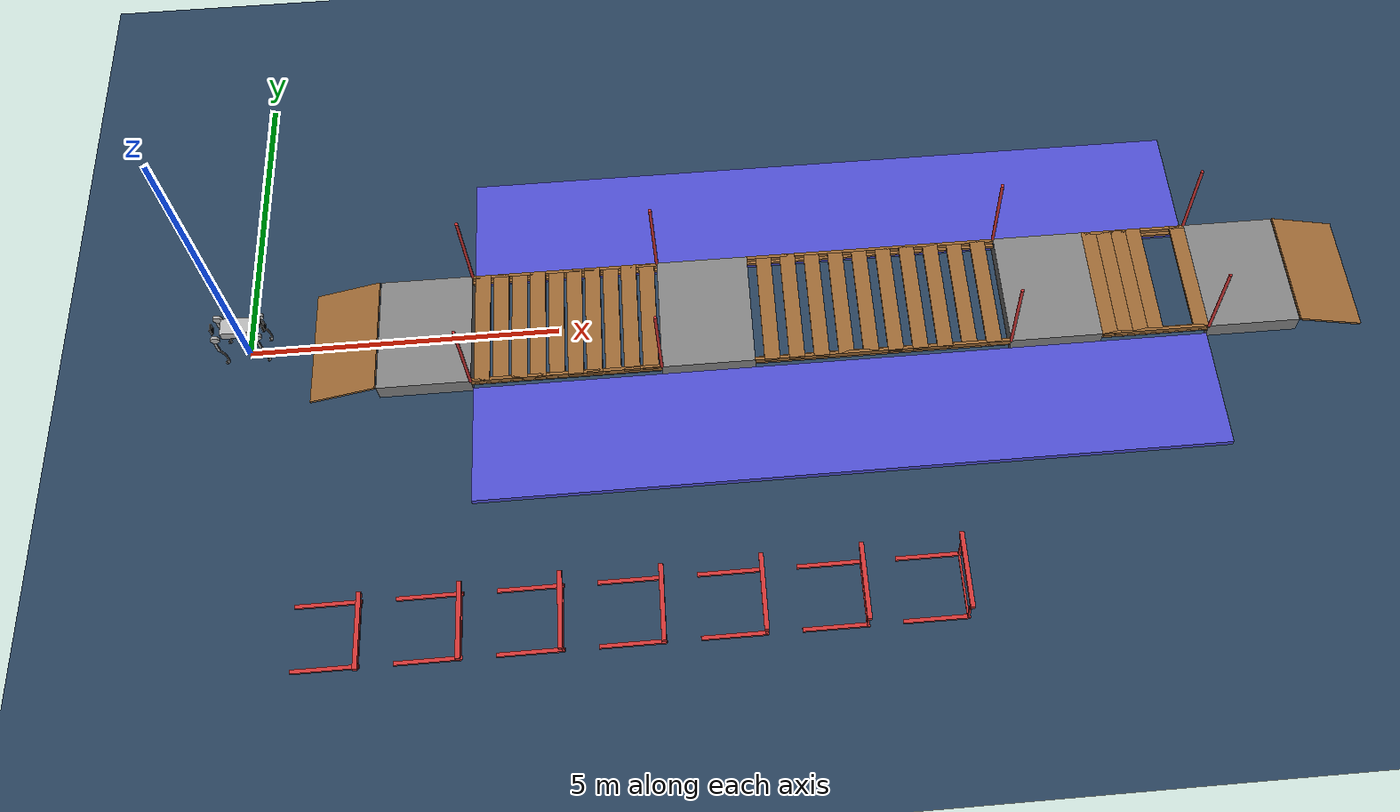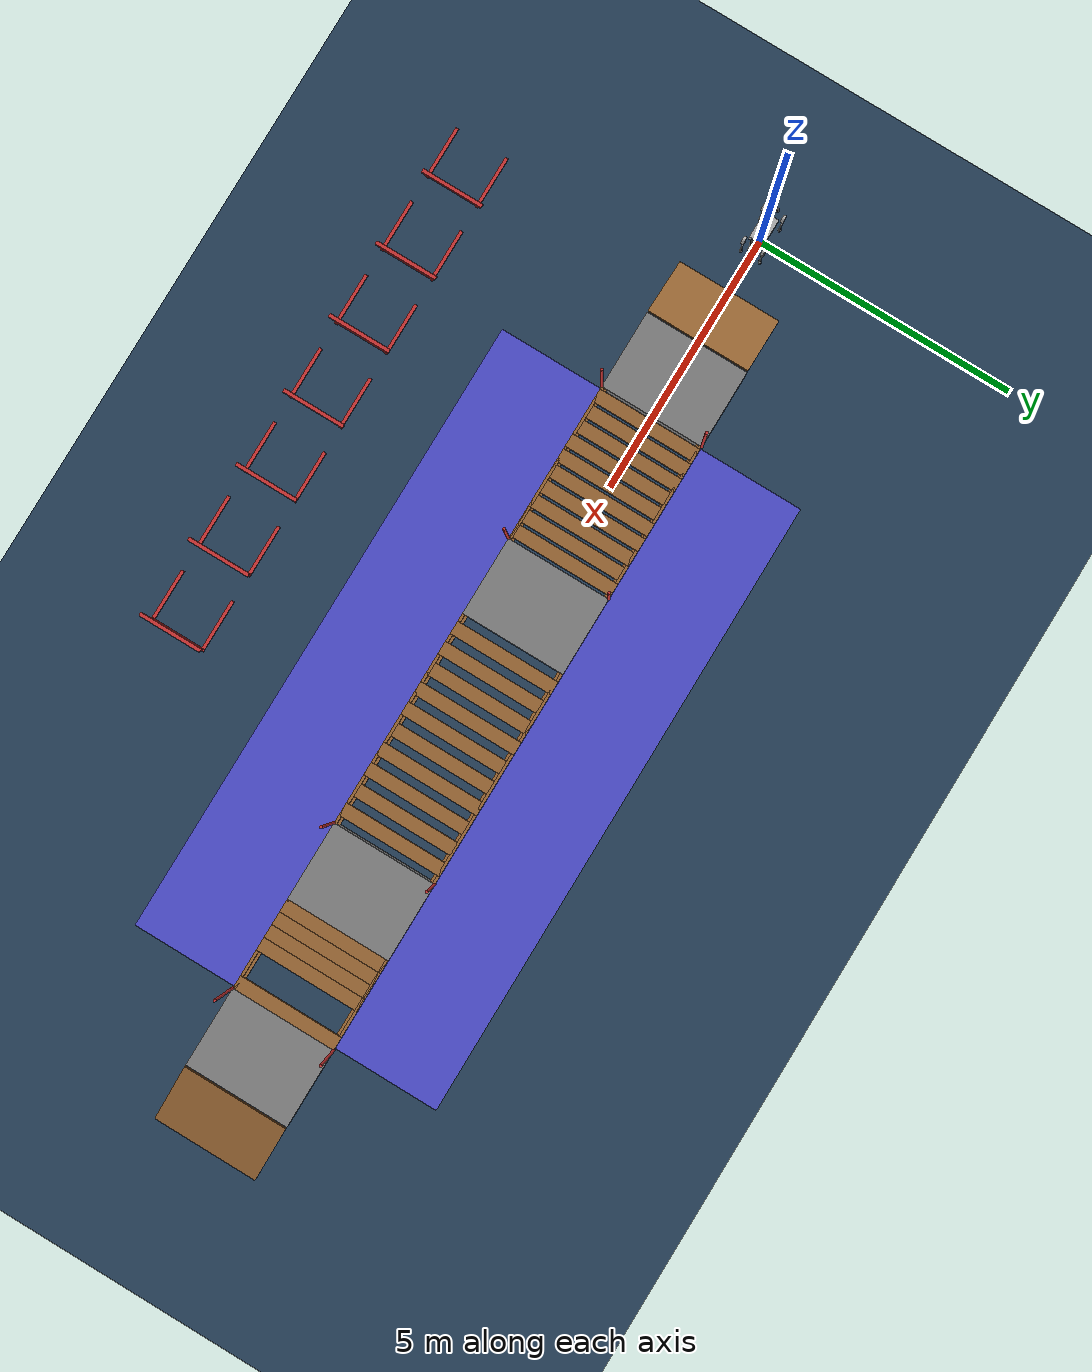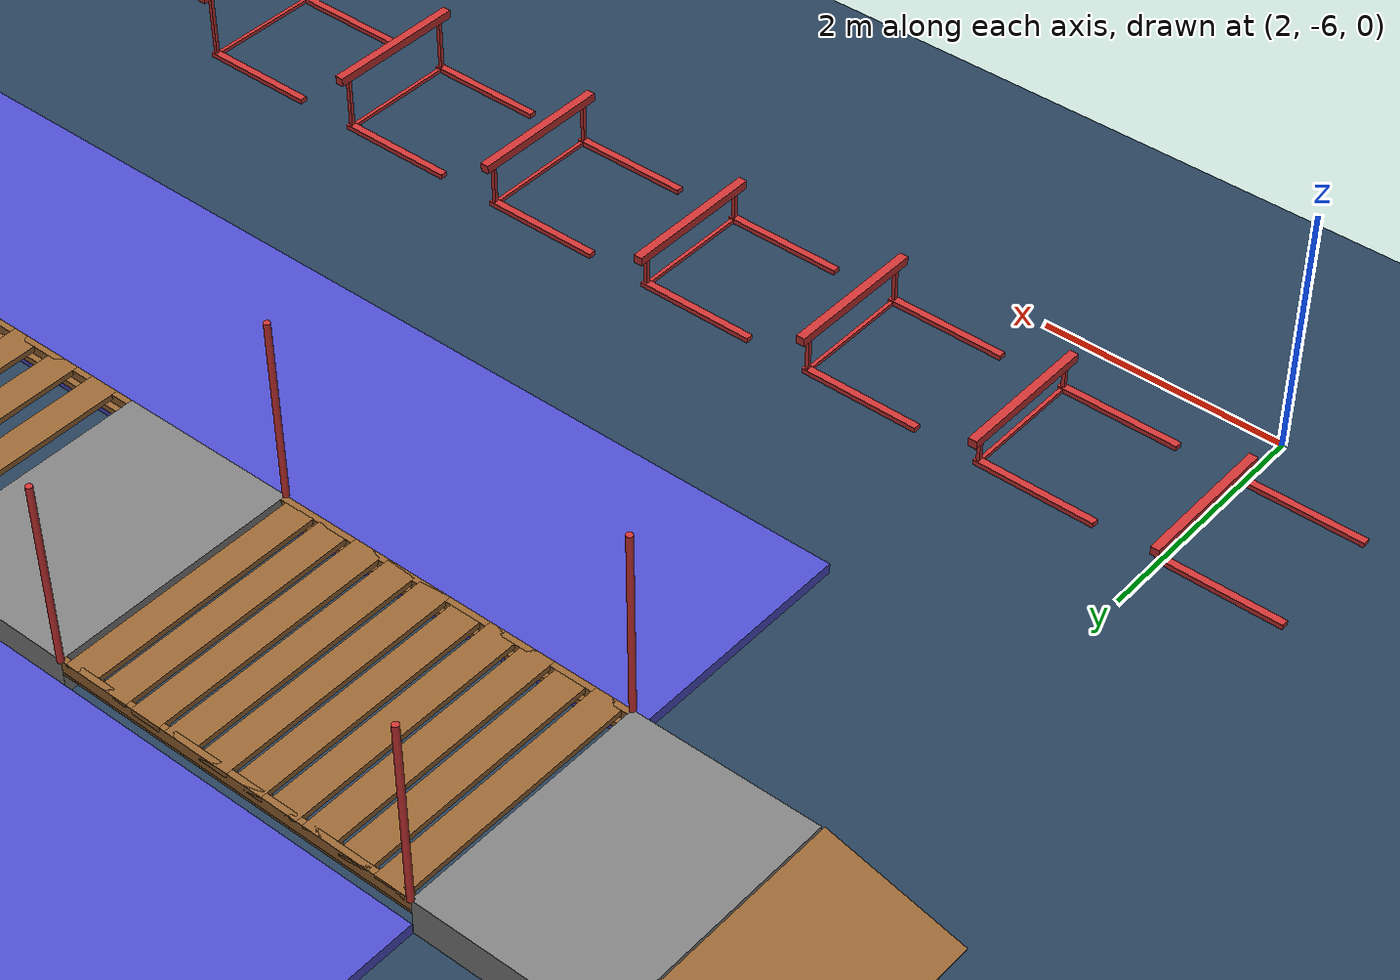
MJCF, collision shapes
<mujoco model="b2 bridge and hurdles terrain">
  <include file="b2.xml"/>

  <statistic center="0 0 0.3" extent="8"/>

  <visual>
    <headlight diffuse="0.6 0.6 0.6" ambient="0.3 0.3 0.3" specular="0 0 0"/>
    <rgba haze="0.15 0.25 0.35 1"/>
    <global azimuth="-130" elevation="-20"/>
  </visual>

  <asset>
    <texture type="skybox" builtin="gradient" rgb1="0.3 0.5 0.7" rgb2="0 0 0" width="512" height="3072"/>
    <texture type="2d" name="groundplane" builtin="checker" mark="edge" rgb1="0.2 0.3 0.4" rgb2="0.1 0.2 0.3"
      markrgb="0.8 0.8 0.8" width="300" height="300"/>
    <material name="groundplane" texture="groundplane" texuniform="true" texrepeat="10 10" reflectance="0.2"/>
    <material name="bridge" rgba="0.6 0.4 0.2 1"/>
    <material name="hurdle" rgba="0.8 0.2 0.2 1"/>
    <material name="platform" rgba="0.5 0.5 0.5 1"/>
  </asset>

  <worldbody>
    <light pos="3 0 3" dir="0 0 -1" directional="true"/>
    <geom name="floor" size="0 0 0.05" type="plane" material="groundplane"/>

    <!-- ========== LEFT LANE: SUSPENSION BRIDGE ========== -->

    <!-- Starting Ramp - Left Lane (corrected slope direction) -->
    <geom name="ramp_start" type="box" size="0.5598 1.0 0.02" pos="1.5598 0.0 0.15" quat="0.9914449 0 -0.1305262 0" material="bridge"/>

    <!-- Starting Platform of Bridge -->
    <geom name="bridge_platform_1" type="box" size="0.75 1.0 0.15" pos="2.8696 0.0 0.15" material="platform"/>

    <!-- Sensor poles at end of Section 0 -->
    <geom name="pole_left_0" type="cylinder" size="0.025 0.75" pos="3.6196 -1.0 1.05" material="hurdle"/>
    <geom name="pole_right_0" type="cylinder" size="0.025 0.75" pos="3.6196 1.0 1.05" material="hurdle"/>

    <!-- Bridge Section 1: Multiple planks with gaps (3.05m long with 0.05m gaps) -->
    <!-- Section 1 starts at x=3.6196 (platform_1 ends at 3.6196) -->
    <geom name="plank_1_1" type="box" size="0.125 1.0 0.0225" pos="3.7946 0.0 0.2775" material="bridge"/>
    <geom name="plank_1_2" type="box" size="0.125 1.0 0.0225" pos="4.0946 0.0 0.2775" material="bridge"/>
    <geom name="plank_1_3" type="box" size="0.125 1.0 0.0225" pos="4.3946 0.0 0.2775" material="bridge"/>
    <geom name="plank_1_4" type="box" size="0.125 1.0 0.0225" pos="4.6946 0.0 0.2775" material="bridge"/>
    <geom name="plank_1_5" type="box" size="0.125 1.0 0.0225" pos="4.9946 0.0 0.2775" material="bridge"/>
    <geom name="plank_1_6" type="box" size="0.125 1.0 0.0225" pos="5.2946 0.0 0.2775" material="bridge"/>
    <geom name="plank_1_7" type="box" size="0.125 1.0 0.0225" pos="5.5946 0.0 0.2775" material="bridge"/>
    <geom name="plank_1_8" type="box" size="0.125 1.0 0.0225" pos="5.8946 0.0 0.2775" material="bridge"/>
    <geom name="plank_1_9" type="box" size="0.125 1.0 0.0225" pos="6.1946 0.0 0.2775" material="bridge"/>
    <geom name="plank_1_10" type="box" size="0.125 1.0 0.0225" pos="6.4946 0.0 0.2775" material="bridge"/>
    <!-- Section 1 ends at x=6.6696 -->

    <!-- Support beams for Section 1 (left and right) -->
    <geom name="beam_left_1" type="box" size="1.525 0.05 0.025" pos="5.1446 -0.95 0.2025" material="bridge"/>
    <geom name="beam_right_1" type="box" size="1.525 0.05 0.025" pos="5.1446 0.95 0.2025" material="bridge"/>

    <!-- Connectors -->
    <geom name="connector_left_1" type="box" size="1.525 0.025 0.05" pos="5.1446 -0.975 0.25" material="bridge"/>
    <geom name="connector_right_1" type="box" size="1.525 0.025 0.05" pos="5.1446 0.975 0.25" material="bridge"/>

    <!-- Sensor poles at end of Section 1 -->
    <geom name="pole_left_1" type="cylinder" size="0.025 0.75" pos="6.6696 -1.0 1.05" material="hurdle"/>
    <geom name="pole_right_1" type="cylinder" size="0.025 0.75" pos="6.6696 1.0 1.05" material="hurdle"/>

    <!-- Middle Platform (starts at 6.6696, center at 7.4196) -->
    <geom name="bridge_platform_2" type="box" size="0.75 1.0 0.15" pos="7.4196 0.0 0.15" material="platform"/>

    <!-- Bridge Section 2: Planks with larger gaps (4.15m long with 0.15m gaps) -->
    <!-- Section 2 starts at x=8.1696 (platform_2 ends at 8.1696) -->
    <geom name="plank_2_1" type="box" size="0.125 1.0 0.0225" pos="8.4446 0.0 0.2775" material="bridge"/>
    <geom name="plank_2_2" type="box" size="0.125 1.0 0.0225" pos="8.8446 0.0 0.2775" material="bridge"/>
    <geom name="plank_2_3" type="box" size="0.125 1.0 0.0225" pos="9.2446 0.0 0.2775" material="bridge"/>
    <geom name="plank_2_4" type="box" size="0.125 1.0 0.0225" pos="9.6446 0.0 0.2775" material="bridge"/>
    <geom name="plank_2_5" type="box" size="0.125 1.0 0.0225" pos="10.0446 0.0 0.2775" material="bridge"/>
    <geom name="plank_2_6" type="box" size="0.125 1.0 0.0225" pos="10.4446 0.0 0.2775" material="bridge"/>
    <geom name="plank_2_7" type="box" size="0.125 1.0 0.0225" pos="10.8446 0.0 0.2775" material="bridge"/>
    <geom name="plank_2_8" type="box" size="0.125 1.0 0.0225" pos="11.2446 0.0 0.2775" material="bridge"/>
    <geom name="plank_2_9" type="box" size="0.125 1.0 0.0225" pos="11.6446 0.0 0.2775" material="bridge"/>
    <geom name="plank_2_10" type="box" size="0.125 1.0 0.0225" pos="12.0446 0.0 0.2775" material="bridge"/>
    <!-- Section 2 ends at x=12.3196 -->

    <!-- Support beams for Section 2 -->
    <geom name="beam_left_2" type="box" size="2.075 0.05 0.025" pos="10.2446 -0.95 0.2025" material="bridge"/>
    <geom name="beam_right_2" type="box" size="2.075 0.05 0.025" pos="10.2446 0.95 0.2025" material="bridge"/>

    <!-- Connectors Section 2 -->
    <geom name="connector_left_2" type="box" size="2.075 0.025 0.05" pos="10.2446 -0.975 0.25" material="bridge"/>
    <geom name="connector_right_2" type="box" size="2.075 0.025 0.05" pos="10.2446 0.975 0.25" material="bridge"/>

    <!-- Sensor poles at end of Section 2 -->
    <geom name="pole_left_2" type="cylinder" size="0.025 0.75" pos="12.3196 -1.0 1.05" material="hurdle"/>
    <geom name="pole_right_2" type="cylinder" size="0.025 0.75" pos="12.3196 1.0 1.05" material="hurdle"/>

    <!-- End Platform of Bridge (starts at 12.3196, center at 13.0696) -->
    <geom name="bridge_platform_3" type="box" size="0.75 1.0 0.15" pos="13.0696 0.0 0.15" material="platform"/>

    <!-- Bridge Section 3: With one large 0.5m gap -->
    <!-- Section 3 starts at x=13.8196 (platform_3 ends at 13.8196), total length 1.75m -->
    <geom name="plank_3_1" type="box" size="0.125 1.0 0.0225" pos="13.9446 0.0 0.2775" material="bridge"/>
    <geom name="plank_3_2" type="box" size="0.125 1.0 0.0225" pos="14.1946 0.0 0.2775" material="bridge"/>
    <geom name="plank_3_3" type="box" size="0.125 1.0 0.0225" pos="14.4446 0.0 0.2775" material="bridge"/>
    <geom name="plank_3_4" type="box" size="0.125 1.0 0.0225" pos="14.6946 0.0 0.2775" material="bridge"/>
    <!-- Large gap here (0.5m) from 14.8196 to 15.3196 -->
    <geom name="plank_3_5" type="box" size="0.125 1.0 0.0225" pos="15.4446 0.0 0.2775" material="bridge"/>
    <!-- Section 3 ends at x=15.5696 -->

    <!-- Support beams for Section 3 -->
    <geom name="beam_left_3" type="box" size="0.875 0.05 0.025" pos="14.6946 -0.95 0.2025" material="bridge"/>
    <geom name="beam_right_3" type="box" size="0.875 0.05 0.025" pos="14.6946 0.95 0.2025" material="bridge"/>

    <!-- Connectors Section 3 -->
    <geom name="connector_left_3" type="box" size="0.875 0.025 0.05" pos="14.6946 -0.975 0.25" material="bridge"/>
    <geom name="connector_right_3" type="box" size="0.875 0.025 0.05" pos="14.6946 0.975 0.25" material="bridge"/>

    <!-- Sensor poles at end of Section 3 -->
    <geom name="pole_left_3" type="cylinder" size="0.025 0.75" pos="15.5696 -1.0 1.05" material="hurdle"/>
    <geom name="pole_right_3" type="cylinder" size="0.025 0.75" pos="15.5696 1.0 1.05" material="hurdle"/>

    <!-- Final Platform (starts at 15.5696, center at 16.3196) -->
    <geom name="bridge_platform_4" type="box" size="0.75 1.0 0.15" pos="16.3196 0.0 0.15" material="platform"/>

    <!-- End Ramp (corrected slope direction, starts at 17.0696, center at 17.6294) -->
    <geom name="ramp_end" type="box" size="0.5598 1.0 0.02" pos="17.6294 0.0 0.15" quat="0.9914449 0 0.1305262 0" material="bridge"/>

    <!-- Cushion pads on both sides (safety nets) - cover the 3 bridge sections -->
    <geom name="cushion_left" type="box" size="5.975 1.0 0.05" pos="9.6 -2.0 0.025" rgba="0.3 0.3 0.8 0.5"/>
    <geom name="cushion_right" type="box" size="5.975 1.0 0.05" pos="9.6 2.0 0.025" rgba="0.3 0.3 0.8 0.5"/>

    <!-- ========== RIGHT LANE: HURDLES SECTION ========== -->

    <!-- Hurdle 1: Low height (0.15m crossbar) -->
    <geom name="h1_base_bar" type="box" size="0.015 0.5 0.015" pos="2.0 -5.0 0.015" material="hurdle"/>
    <geom name="h1_left_base" type="box" size="0.5 0.03 0.02" pos="1.53 -5.503 0.02" material="hurdle"/>
    <geom name="h1_right_base" type="box" size="0.5 0.03 0.02" pos="1.53 -4.497 0.02" material="hurdle"/>
    <geom name="h1_left_post" type="box" size="0.015 0.015 0.0675" pos="2.0 -5.503 0.0675" material="hurdle"/>
    <geom name="h1_right_post" type="box" size="0.015 0.015 0.0675" pos="2.0 -4.497 0.0675" material="hurdle"/>
    <geom name="h1_crossbar" type="box" size="0.035 0.6 0.035" pos="2.0 -5.0 0.15" material="hurdle"/>

    <!-- Hurdle 2: Medium height (0.25m crossbar) -->
    <geom name="h2_base_bar" type="box" size="0.015 0.5 0.015" pos="3.5 -5.0 0.015" material="hurdle"/>
    <geom name="h2_left_base" type="box" size="0.5 0.03 0.02" pos="3.03 -5.503 0.02" material="hurdle"/>
    <geom name="h2_right_base" type="box" size="0.5 0.03 0.02" pos="3.03 -4.497 0.02" material="hurdle"/>
    <geom name="h2_left_post" type="box" size="0.015 0.015 0.1175" pos="3.5 -5.503 0.1175" material="hurdle"/>
    <geom name="h2_right_post" type="box" size="0.015 0.015 0.1175" pos="3.5 -4.497 0.1175" material="hurdle"/>
    <geom name="h2_crossbar" type="box" size="0.035 0.6 0.035" pos="3.5 -5.0 0.25" material="hurdle"/>

    <!-- Hurdle 3: High height (0.35m crossbar) -->
    <geom name="h3_base_bar" type="box" size="0.015 0.5 0.015" pos="5.0 -5.0 0.015" material="hurdle"/>
    <geom name="h3_left_base" type="box" size="0.5 0.03 0.02" pos="4.53 -5.503 0.02" material="hurdle"/>
    <geom name="h3_right_base" type="box" size="0.5 0.03 0.02" pos="4.53 -4.497 0.02" material="hurdle"/>
    <geom name="h3_left_post" type="box" size="0.015 0.015 0.1675" pos="5.0 -5.503 0.1675" material="hurdle"/>
    <geom name="h3_right_post" type="box" size="0.015 0.015 0.1675" pos="5.0 -4.497 0.1675" material="hurdle"/>
    <geom name="h3_crossbar" type="box" size="0.035 0.6 0.035" pos="5.0 -5.0 0.35" material="hurdle"/>

    <!-- Hurdle 4: Medium-high height (0.30m crossbar) -->
    <geom name="h4_base_bar" type="box" size="0.015 0.5 0.015" pos="6.5 -5.0 0.015" material="hurdle"/>
    <geom name="h4_left_base" type="box" size="0.5 0.03 0.02" pos="6.03 -5.503 0.02" material="hurdle"/>
    <geom name="h4_right_base" type="box" size="0.5 0.03 0.02" pos="6.03 -4.497 0.02" material="hurdle"/>
    <geom name="h4_left_post" type="box" size="0.015 0.015 0.1425" pos="6.5 -5.503 0.1425" material="hurdle"/>
    <geom name="h4_right_post" type="box" size="0.015 0.015 0.1425" pos="6.5 -4.497 0.1425" material="hurdle"/>
    <geom name="h4_crossbar" type="box" size="0.035 0.6 0.035" pos="6.5 -5.0 0.30" material="hurdle"/>

    <!-- Hurdle 5: Very high (0.40m crossbar) -->
    <geom name="h5_base_bar" type="box" size="0.015 0.5 0.015" pos="8.0 -5.0 0.015" material="hurdle"/>
    <geom name="h5_left_base" type="box" size="0.5 0.03 0.02" pos="7.53 -5.503 0.02" material="hurdle"/>
    <geom name="h5_right_base" type="box" size="0.5 0.03 0.02" pos="7.53 -4.497 0.02" material="hurdle"/>
    <geom name="h5_left_post" type="box" size="0.015 0.015 0.1925" pos="8.0 -5.503 0.1925" material="hurdle"/>
    <geom name="h5_right_post" type="box" size="0.015 0.015 0.1925" pos="8.0 -4.497 0.1925" material="hurdle"/>
    <geom name="h5_crossbar" type="box" size="0.035 0.6 0.035" pos="8.0 -5.0 0.40" material="hurdle"/>

    <!-- Hurdle 6: Extra high (0.50m crossbar) -->
    <geom name="h6_base_bar" type="box" size="0.015 0.5 0.015" pos="9.5 -5.0 0.015" material="hurdle"/>
    <geom name="h6_left_base" type="box" size="0.5 0.03 0.02" pos="9.03 -5.503 0.02" material="hurdle"/>
    <geom name="h6_right_base" type="box" size="0.5 0.03 0.02" pos="9.03 -4.497 0.02" material="hurdle"/>
    <geom name="h6_left_post" type="box" size="0.015 0.015 0.2425" pos="9.5 -5.503 0.2425" material="hurdle"/>
    <geom name="h6_right_post" type="box" size="0.015 0.015 0.2425" pos="9.5 -4.497 0.2425" material="hurdle"/>
    <geom name="h6_crossbar" type="box" size="0.035 0.6 0.035" pos="9.5 -5.0 0.50" material="hurdle"/>

    <!-- Hurdle 7: Maximum height (0.60m crossbar) -->
    <geom name="h7_base_bar" type="box" size="0.015 0.5 0.015" pos="11.0 -5.0 0.015" material="hurdle"/>
    <geom name="h7_left_base" type="box" size="0.5 0.03 0.02" pos="10.53 -5.503 0.02" material="hurdle"/>
    <geom name="h7_right_base" type="box" size="0.5 0.03 0.02" pos="10.53 -4.497 0.02" material="hurdle"/>
    <geom name="h7_left_post" type="box" size="0.015 0.015 0.2925" pos="11.0 -5.503 0.2925" material="hurdle"/>
    <geom name="h7_right_post" type="box" size="0.015 0.015 0.2925" pos="11.0 -4.497 0.2925" material="hurdle"/>
    <geom name="h7_crossbar" type="box" size="0.035 0.6 0.035" pos="11.0 -5.0 0.60" material="hurdle"/>

  </worldbody>
</mujoco>

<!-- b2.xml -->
<mujoco model="b2">
  <compiler angle="radian" meshdir="assets" autolimits="true"/>

  <default>
    <default class="b2">
      <geom type="mesh"/>
      <joint damping="1" armature="0.1"/>
      <default class="visual">
        <geom contype="0" conaffinity="0" group="2"/>
      </default>
      <default class="collision">
        <geom group="3" mass="0" density="0"/>
      </default>
      <site size="0.001" rgba="0.5 0.5 0.5 0.3" group="4"/>
    </default>
  </default>

  <asset>
    <mesh name="base_link" file="base_link.obj"/>
    <mesh name="logo_left" file="logo_left.obj"/>
    <mesh name="logo_right" file="logo_right.obj"/>
    <mesh name="unitree_ladar" file="unitree_ladar.obj"/>
    <mesh name="f_dc_link" file="f_dc_link.obj"/>
    <mesh name="r_dc_link" file="r_dc_link.obj"/>
    <mesh name="fake_imu_link" file="fake_imu_link.STL"/>
    <mesh name="fake_head_Link" file="fake_head_Link.STL"/>
    <mesh name="fake_tail_link" file="fake_tail_link.STL"/>
    <mesh name="FL_hip" file="FL_hip.obj"/>
    <mesh name="FL_thigh" file="FL_thigh.obj"/>
    <mesh name="FL_thigh_protect" file="FL_thigh_protect.obj"/>
    <mesh name="FL_calf" file="FL_calf.obj"/>
    <mesh name="FL_foot" file="FL_foot.obj"/>
    <mesh name="FR_hip" file="FR_hip.obj"/>
    <mesh name="FR_thigh" file="FR_thigh.obj"/>
    <mesh name="FR_thigh_protect" file="FR_thigh_protect.obj"/>
    <mesh name="FR_calf" file="FR_calf.obj"/>
    <mesh name="FR_foot" file="FR_foot.obj"/>
    <mesh name="RL_hip" file="RL_hip.obj"/>
    <mesh name="RL_thigh" file="RL_thigh.obj"/>
    <mesh name="RL_thigh_protect" file="RL_thigh_protect.obj"/>
    <mesh name="RL_calf" file="RL_calf.obj"/>
    <mesh name="RL_foot" file="RL_foot.obj"/>
    <mesh name="RR_hip" file="RR_hip.obj"/>
    <mesh name="RR_thigh" file="RR_thigh.obj"/>
    <mesh name="RR_thigh_protect" file="RR_thigh_protect.obj"/>
    <mesh name="RR_calf" file="RR_calf.obj"/>
    <mesh name="RR_foot" file="RR_foot.obj"/>
    <mesh name="f_oc_link" file="f_oc_link.obj"/>
    <mesh name="r_oc_link" file="r_oc_link.obj"/>
  </asset>

  <extension>
    <plugin plugin="mujoco.sensor.ray_caster"/>
    <plugin plugin="mujoco.sensor.ray_caster_camera"/>
  </extension>

  <worldbody>
    <body name="base_link" pos="0 0 0.8" childclass="b2">
      <inertial pos="0.0212868 0.0045819 0.0106169" quat="0.00178111 0.675412 -0.000262894 0.737438" mass="40.8426" diaginertia="1.73786 1.66448 0.343734"/>
      <joint name="floating_base_joint" type="free"/>
      <geom type="mesh" contype="0" conaffinity="0" group="1" density="0" rgba="0.7 0.7 0.7 1" mesh="base_link"/>
      <geom size="0.25 0.14 0.075" type="box" rgba="0.7 0.7 0.7 1" class="collision"/>
      <geom type="mesh" contype="0" conaffinity="0" group="1" density="0" rgba="1 1 1 1" mesh="logo_left"/>
      <geom type="mesh" contype="0" conaffinity="0" group="1" density="0" rgba="1 1 1 1" mesh="logo_right"/>
      <geom pos="0.34218 0 0.17851" type="mesh" contype="0" conaffinity="0" group="1" density="0" rgba="0.15 0.15 0.15 1" mesh="unitree_ladar"/>
      <geom size="0.076 0.08" pos="0.34218 0 0.15851" type="cylinder" rgba="0.15 0.15 0.15 1" class="collision"/>
      <geom pos="0.841724 -4.57659e-06 0.130379" quat="0.00244632 3.13845e-06 0.999997 1.29099e-06" type="mesh" contype="0" conaffinity="0" group="1" density="0" rgba="0 0 0 1" mesh="f_dc_link"/>
      <geom pos="-0.378319 0.000200109 -0.379902" quat="-1.30076e-06 -0.708662 5.35065e-07 0.705548" type="mesh" contype="0" conaffinity="0" group="1" density="0" rgba="0 0 0 1" mesh="r_dc_link"/>
      <geom pos="0 -0.02341 0.04927" type="mesh" contype="0" conaffinity="0" group="1" density="0" rgba="0 0 0 1" mesh="fake_imu_link"/>
      <geom type="mesh" contype="0" conaffinity="0" group="1" density="0" rgba="0 0 0 1" mesh="fake_head_Link"/>
      <geom size="0.02 0.06 0.07" pos="0.41 0 0.005" type="box" rgba="0 0 0 1" class="collision"/>
      <geom type="mesh" contype="0" conaffinity="0" group="1" density="0" rgba="0 0 0 1" mesh="fake_tail_link"/>
      <geom size="0.0125 0.06 0.07" pos="-0.405 0 0.005" type="box" rgba="0 0 0 1" class="collision"/>
      <geom pos="0.84158 -0.0134347 -0.0134347" quat="-3.89602e-06 1.29867e-06 0.707107 -0.707107" type="mesh" contype="0" conaffinity="0" group="1" density="0" rgba="0 0 0 1" mesh="f_oc_link"/>
      <geom pos="-0.00451008 0.0252504 -0.0262476" quat="0.707107 -0.707107 -1.29867e-06 -1.29867e-06" type="mesh" contype="0" conaffinity="0" group="1" density="0" rgba="0 0 0 1" mesh="r_oc_link"/>
      <site name="imu" pos="0 -0.02341 0.04927"/>
      <camera name="ray_caster" pos="0.0 0.0 0.5" quat="0.707107 0 0 0.707107"/>
      <camera name="ray_caster_camera" pos="0.415 0.02 0.05" xyaxes="0 -1 0 0.707 0 0.707" />
      <body name="FL_hip" pos="0.3285 0.072 0">
        <inertial pos="-0.00829923 -0.00998502 0.000235465" quat="0.525168 0.518964 0.477213 0.476595" mass="2.5294" diaginertia="0.00485541 0.00370618 0.00277182"/>
        <joint name="FL_hip_joint" pos="0 0 0" axis="1 0 0" range="-0.87 0.87"/>
        <geom type="mesh" contype="0" conaffinity="0" group="1" density="0" rgba="0.7 0.7 0.7 1" mesh="FL_hip"/>
        <geom size="0.07 0.025" pos="0 0.12 0" quat="0.707107 0.707107 0 0" type="cylinder" rgba="0.7 0.7 0.7 1" class="collision"/>
        <body name="FL_thigh" pos="0 0.11973 0">
          <inertial pos="-0.00418663 -0.0366068 -0.0432737" quat="0.884916 0.0880602 -0.00896728 0.457262" mass="7.4554" diaginertia="0.085057 0.0842843 0.0112538"/>
          <joint name="FL_thigh_joint" pos="0 0 0" axis="0 1 0" range="-0.94 4.69"/>
          <geom type="mesh" contype="0" conaffinity="0" group="1" density="0" rgba="0.7 0.7 0.7 1" mesh="FL_thigh"/>
          <geom size="0.16 0.02225 0.027" pos="-0.025 0 -0.16" quat="0.707388 0 0.706825 0" type="box" rgba="0.7 0.7 0.7 1" class="collision"/>
          <geom type="mesh" contype="0" conaffinity="0" group="1" density="0" rgba="0.65 0.68 0.65 1" mesh="FL_thigh_protect"/>
          <body name="FL_calf" pos="0 -8.6984e-05 -0.35">
            <inertial pos="0.0096848 1.25758e-05 -0.158987" quat="0.70753 -0.00625821 -0.00634277 0.706627" mass="0.679123" diaginertia="0.0162494 0.0161173 0.000398115"/>
            <joint name="FL_calf_joint" pos="0 0 0" axis="0 1 0" range="-2.82 -0.43"/>
            <geom type="mesh" contype="0" conaffinity="0" group="1" density="0" rgba="0.7 0.7 0.7 1" mesh="FL_calf"/>
            <geom size="0.05 0.01225 0.009" pos="-0.002 0 -0.03" quat="0.825336 0 0.564642 0" type="box" rgba="0.7 0.7 0.7 1" class="collision"/>
            <geom size="0.05 0.01225 0.009" pos="0.022 0 -0.1" quat="0.780707 0 0.624897 0" type="box" rgba="0.7 0.7 0.7 1" class="collision"/>
            <geom size="0.075 0.01225 0.0075" pos="0.036 0 -0.225" quat="0.721382 0 0.692537 0" type="box" rgba="0.7 0.7 0.7 1" class="collision"/>
            <geom size="0.025 0.014 0.0175" pos="0.023 0 -0.31" quat="0.540302 0 0.841471 0" type="box" rgba="0.7 0.7 0.7 1" class="collision"/>
            <geom pos="0 8.6986e-05 0" type="mesh" contype="0" conaffinity="0" group="1" density="0" rgba="0.15 0.15 0.15 1" mesh="FL_foot" friction="0.4 0.005 0.0001"/>
            <geom size="0.032" pos="0 8.6986e-05 -0.35" quat="0.707388 0.706825 0 0" type="sphere" rgba="0.15 0.15 0.15 1" class="collision" friction="0.4 0.005 0.0001"/>
          </body>
        </body>
      </body>
      <body name="FR_hip" pos="0.3285 -0.072 0">
        <inertial pos="-0.00829923 0.00998502 0.000235465" quat="0.476595 0.477213 0.518964 0.525168" mass="2.5294" diaginertia="0.00485541 0.00370618 0.00277182"/>
        <joint name="FR_hip_joint" pos="0 0 0" axis="1 0 0" range="-0.87 0.87"/>
        <geom type="mesh" contype="0" conaffinity="0" group="1" density="0" rgba="0.7 0.7 0.7 1" mesh="FR_hip"/>
        <geom size="0.07 0.025" pos="0 -0.12 0" quat="0.707107 0.707107 0 0" type="cylinder" rgba="0.7 0.7 0.7 1" class="collision"/>
        <body name="FR_thigh" pos="0 -0.11973 0">
          <inertial pos="-0.00418663 0.0366068 -0.0432737" quat="0.457262 -0.00896728 0.0880602 0.884916" mass="7.4554" diaginertia="0.085057 0.0842843 0.0112538"/>
          <joint name="FR_thigh_joint" pos="0 0 0" axis="0 1 0" range="-0.94 4.69"/>
          <geom type="mesh" contype="0" conaffinity="0" group="1" density="0" rgba="0.7 0.7 0.7 1" mesh="FR_thigh"/>
          <geom size="0.125 0.014 0.02" pos="-0.03 0 -0.2" quat="0.707388 0 0.706825 0" type="box" rgba="0.7 0.7 0.7 1" class="collision"/>
          <geom type="mesh" contype="0" conaffinity="0" group="1" density="0" rgba="0.65 0.68 0.65 1" mesh="FR_thigh_protect"/>
          <body name="FR_calf" pos="0 8.6986e-05 -0.35">
            <inertial pos="0.0096848 0 -0.158987" quat="0.707079 -0.00630052 -0.00630052 0.707079" mass="0.679123" diaginertia="0.0162494 0.0161173 0.000398115"/>
            <joint name="FR_calf_joint" pos="0 0 0" axis="0 1 0" range="-2.82 -0.43"/>
            <geom type="mesh" contype="0" conaffinity="0" group="1" density="0" rgba="0.7 0.7 0.7 1" mesh="FR_calf"/>
            <geom size="0.05 0.01225 0.009" pos="-0.002 0 -0.03" quat="0.825336 0 0.564642 0" type="box" rgba="0.7 0.7 0.7 1" class="collision"/>
            <geom size="0.05 0.01225 0.009" pos="0.022 0 -0.1" quat="0.780707 0 0.624897 0" type="box" rgba="0.7 0.7 0.7 1" class="collision"/>
            <geom size="0.075 0.01225 0.0075" pos="0.036 0 -0.225" quat="0.721382 0 0.692537 0" type="box" rgba="0.7 0.7 0.7 1" class="collision"/>
            <geom size="0.025 0.014 0.0175" pos="0.023 0 -0.31" quat="0.540302 0 0.841471 0" type="box" rgba="0.7 0.7 0.7 1" class="collision"/>
            <geom type="mesh" contype="0" conaffinity="0" group="1" density="0" rgba="0.15 0.15 0.15 1" mesh="FR_foot" friction="0.4 0.005 0.0001"/>
            <geom size="0.032" pos="0 8.6986e-05 -0.35" quat="0.707388 0.706825 0 0" type="sphere" rgba="0.15 0.15 0.15 1" class="collision" friction="0.4 0.005 0.0001"/>
          </body>
        </body>
      </body>
      <body name="RL_hip" pos="-0.3285 0.072 0">
        <inertial pos="0.00829923 -0.00998502 0.000235465" quat="0.477213 0.476595 0.525168 0.518964" mass="2.5294" diaginertia="0.00485541 0.00370618 0.00277182"/>
        <joint name="RL_hip_joint" pos="0 0 0" axis="1 0 0" range="-0.87 0.87"/>
        <geom type="mesh" contype="0" conaffinity="0" group="1" density="0" rgba="0.7 0.7 0.7 1" mesh="RL_hip"/>
        <geom size="0.07 0.025" pos="0 0.12 0" quat="0.707107 0.707107 0 0" type="cylinder" rgba="0.7 0.7 0.7 1" class="collision"/>
        <body name="RL_thigh" pos="0 0.11973 0">
          <inertial pos="-0.00418663 -0.0366068 -0.0432737" quat="0.884916 0.0880602 -0.00896728 0.457262" mass="7.4554" diaginertia="0.085057 0.0842843 0.0112538"/>
          <joint name="RL_thigh_joint" pos="0 0 0" axis="0 1 0" range="-0.94 4.69"/>
          <geom type="mesh" contype="0" conaffinity="0" group="1" density="0" rgba="0.7 0.7 0.7 1" mesh="RL_thigh"/>
          <geom size="0.125 0.014 0.02" pos="-0.03 0 -0.2" quat="0.707388 0 0.706825 0" type="box" rgba="0.7 0.7 0.7 1" class="collision"/>
          <geom type="mesh" contype="0" conaffinity="0" group="1" density="0" rgba="0.65 0.68 0.65 1" mesh="RL_thigh_protect"/>
          <body name="RL_calf" pos="0 -8.6984e-05 -0.35">
            <inertial pos="0.0096848 1.25758e-05 -0.158987" quat="0.70753 -0.00625821 -0.00634277 0.706627" mass="0.679123" diaginertia="0.0162494 0.0161173 0.000398115"/>
            <joint name="RL_calf_joint" pos="0 0 0" axis="0 1 0" range="-2.82 -0.43"/>
            <geom type="mesh" contype="0" conaffinity="0" group="1" density="0" rgba="0.7 0.7 0.7 1" mesh="RL_calf"/>
            <geom size="0.05 0.01225 0.009" pos="-0.002 0 -0.03" quat="0.825336 0 0.564642 0" type="box" rgba="0.7 0.7 0.7 1" class="collision"/>
            <geom size="0.05 0.01225 0.009" pos="0.022 0 -0.1" quat="0.780707 0 0.624897 0" type="box" rgba="0.7 0.7 0.7 1" class="collision"/>
            <geom size="0.075 0.01225 0.0075" pos="0.036 0 -0.225" quat="0.721382 0 0.692537 0" type="box" rgba="0.7 0.7 0.7 1" class="collision"/>
            <geom size="0.025 0.014 0.0175" pos="0.023 0 -0.31" quat="0.540302 0 0.841471 0" type="box" rgba="0.7 0.7 0.7 1" class="collision"/>
            <geom pos="0 8.6986e-05 0" type="mesh" contype="0" conaffinity="0" group="1" density="0" rgba="0.15 0.15 0.15 1" mesh="RL_foot" friction="0.4 0.005 0.0001"/>
            <geom size="0.032" pos="0 8.6986e-05 -0.35" quat="0.707388 0.706825 0 0" type="sphere" rgba="0.15 0.15 0.15 1" class="collision" friction="0.4 0.005 0.0001"/>
          </body>
        </body>
      </body>
      <body name="RR_hip" pos="-0.3285 -0.072 0">
        <inertial pos="0.00829923 -0.00825992 0.000235465" quat="0.524846 0.53164 0.469132 0.470967" mass="2.5294" diaginertia="0.0048658 0.00378576 0.00284106"/>
        <joint name="RR_hip_joint" pos="0 0 0" axis="1 0 0" range="-0.87 0.87"/>
        <geom type="mesh" contype="0" conaffinity="0" group="1" density="0" rgba="0.7 0.7 0.7 1" mesh="RR_hip"/>
        <geom size="0.07 0.025" pos="0 -0.12 0" quat="0.707107 0.707107 0 0" type="cylinder" rgba="0.7 0.7 0.7 1" class="collision"/>
        <body name="RR_thigh" pos="0 -0.11973 0">
          <inertial pos="-0.00418663 0.0366068 -0.0432737" quat="0.457262 -0.00896728 0.0880602 0.884916" mass="7.4554" diaginertia="0.085057 0.0842843 0.0112538"/>
          <joint name="RR_thigh_joint" pos="0 0 0" axis="0 1 0" range="-0.94 4.69"/>
          <geom type="mesh" contype="0" conaffinity="0" group="1" density="0" rgba="0.7 0.7 0.7 1" mesh="RR_thigh"/>
          <geom size="0.125 0.014 0.02" pos="-0.03 0 -0.2" quat="0.707388 0 0.706825 0" type="box" rgba="0.7 0.7 0.7 1" class="collision"/>
          <geom type="mesh" contype="0" conaffinity="0" group="1" density="0" rgba="0.65 0.68 0.65 1" mesh="RR_thigh_protect"/>
          <body name="RR_calf" pos="0 8.6986e-05 -0.35">
            <inertial pos="0.0096848 -1.25756e-05 -0.158987" quat="0.706627 -0.00634277 -0.00625821 0.70753" mass="0.679123" diaginertia="0.0162494 0.0161173 0.000398115"/>
            <joint name="RR_calf_joint" pos="0 0 0" axis="0 1 0" range="-2.82 -0.43"/>
            <geom type="mesh" contype="0" conaffinity="0" group="1" density="0" rgba="0.7 0.7 0.7 1" mesh="RR_calf"/>
            <geom size="0.05 0.01225 0.009" pos="-0.002 0 -0.03" quat="0.825336 0 0.564642 0" type="box" rgba="0.7 0.7 0.7 1" class="collision"/>
            <geom size="0.05 0.01225 0.009" pos="0.022 0 -0.1" quat="0.780707 0 0.624897 0" type="box" rgba="0.7 0.7 0.7 1" class="collision"/>
            <geom size="0.075 0.01225 0.0075" pos="0.036 0 -0.225" quat="0.721382 0 0.692537 0" type="box" rgba="0.7 0.7 0.7 1" class="collision"/>
            <geom size="0.025 0.014 0.0175" pos="0.023 0 -0.31" quat="0.540302 0 0.841471 0" type="box" rgba="0.7 0.7 0.7 1" class="collision"/>
            <geom pos="0 -8.6984e-05 0" type="mesh" contype="0" conaffinity="0" group="1" density="0" rgba="0.15 0.15 0.15 1" mesh="RR_foot" friction="0.4 0.005 0.0001"/>
            <geom size="0.032" pos="0 8.6986e-05 -0.35" quat="0.707388 0.706825 0 0" type="sphere" rgba="0.15 0.15 0.15 1" class="collision" friction="0.4 0.005 0.0001"/>
          </body>
        </body>
      </body>
    </body>
  </worldbody>

  <actuator>
    <motor class="b2" ctrlrange="-200 200"  name="FR_hip" joint="FR_hip_joint"/>
    <motor class="b2" ctrlrange="-200 200"  name="FR_thigh" joint="FR_thigh_joint"/>
    <motor class="b2" ctrlrange="-300 300"  name="FR_calf" joint="FR_calf_joint"/>
    <motor class="b2" ctrlrange="-200 200"  name="FL_hip" joint="FL_hip_joint"/>
    <motor class="b2" ctrlrange="-200 200"  name="FL_thigh" joint="FL_thigh_joint"/>
    <motor class="b2" ctrlrange="-300 300" name="FL_calf" joint="FL_calf_joint"/>
    <motor class="b2" ctrlrange="-200 200"  name="RR_hip" joint="RR_hip_joint"/>
    <motor class="b2" ctrlrange="-200 200"  name="RR_thigh" joint="RR_thigh_joint"/>
    <motor class="b2" ctrlrange="-300 300" name="RR_calf" joint="RR_calf_joint"/>
    <motor class="b2" ctrlrange="-200 200"  name="RL_hip" joint="RL_hip_joint"/>
    <motor class="b2" ctrlrange="-200 200"  name="RL_thigh" joint="RL_thigh_joint"/>
    <motor class="b2" ctrlrange="-300 300" name="RL_calf" joint="RL_calf_joint"/>
  </actuator>

  <sensor>
    <jointpos name="FR_hip_pos" joint="FR_hip_joint" />
    <jointpos name="FR_thigh_pos" joint="FR_thigh_joint" />
    <jointpos name="FR_calf_pos" joint="FR_calf_joint" />
    <jointpos name="FL_hip_pos" joint="FL_hip_joint" />
    <jointpos name="FL_thigh_pos" joint="FL_thigh_joint" />
    <jointpos name="FL_calf_pos" joint="FL_calf_joint" />
    <jointpos name="RR_hip_pos" joint="RR_hip_joint" />
    <jointpos name="RR_thigh_pos" joint="RR_thigh_joint" />
    <jointpos name="RR_calf_pos" joint="RR_calf_joint" />
    <jointpos name="RL_hip_pos" joint="RL_hip_joint" />
    <jointpos name="RL_thigh_pos" joint="RL_thigh_joint" />
    <jointpos name="RL_calf_pos" joint="RL_calf_joint" />

    <jointvel name="FR_hip_vel" joint="FR_hip_joint" />
    <jointvel name="FR_thigh_vel" joint="FR_thigh_joint" />
    <jointvel name="FR_calf_vel" joint="FR_calf_joint" />
    <jointvel name="FL_hip_vel" joint="FL_hip_joint" />
    <jointvel name="FL_thigh_vel" joint="FL_thigh_joint" />
    <jointvel name="FL_calf_vel" joint="FL_calf_joint" />
    <jointvel name="RR_hip_vel" joint="RR_hip_joint" />
    <jointvel name="RR_thigh_vel" joint="RR_thigh_joint" />
    <jointvel name="RR_calf_vel" joint="RR_calf_joint" />
    <jointvel name="RL_hip_vel" joint="RL_hip_joint" />
    <jointvel name="RL_thigh_vel" joint="RL_thigh_joint" />
    <jointvel name="RL_calf_vel" joint="RL_calf_joint" />

    <jointactuatorfrc name="FR_hip_torque" joint="FR_hip_joint" noise="0.01" />
    <jointactuatorfrc name="FR_thigh_torque" joint="FR_thigh_joint" noise="0.01" />
    <jointactuatorfrc name="FR_calf_torque" joint="FR_calf_joint" noise="0.01" />
    <jointactuatorfrc name="FL_hip_torque" joint="FL_hip_joint" noise="0.01" />
    <jointactuatorfrc name="FL_thigh_torque" joint="FL_thigh_joint" noise="0.01" />
    <jointactuatorfrc name="FL_calf_torque" joint="FL_calf_joint" noise="0.01" />
    <jointactuatorfrc name="RR_hip_torque" joint="RR_hip_joint" noise="0.01" />
    <jointactuatorfrc name="RR_thigh_torque" joint="RR_thigh_joint" noise="0.01" />
    <jointactuatorfrc name="RR_calf_torque" joint="RR_calf_joint" noise="0.01" />
    <jointactuatorfrc name="RL_hip_torque" joint="RL_hip_joint" noise="0.01" />
    <jointactuatorfrc name="RL_thigh_torque" joint="RL_thigh_joint" noise="0.01" />
    <jointactuatorfrc name="RL_calf_torque" joint="RL_calf_joint" noise="0.01" />

    <framequat name="imu_quat" objtype="site" objname="imu" />
    <gyro name="imu_gyro" site="imu" />
    <accelerometer name="imu_acc" site="imu" />

    <framepos name="frame_pos" objtype="site" objname="imu" />
    <framelinvel name="frame_vel" objtype="site" objname="imu" />

    <plugin name="depth_camera" plugin="mujoco.sensor.ray_caster_camera" objtype="camera"
            objname="ray_caster_camera">
      <config key="focal_length" value="0.00965" />
      <config key="horizontal_aperture" value="0.01426422" />
      <config key="size" value="64 48" />
      <config key="dis_range" value="0.3 3.0" />
      <config key="vertical_aperture" value="0.0106981647" />

      <config key="compute_time_log" value="0" />
      <config key="n_step_update" value="5" />

      <config key="draw_deep_ray_ids" value="0 10 0 0.5 0.5 0.5 0 31 63 3071" />
      <config key="draw_hip_point" value="1 0.02" />

      <config key="sensor_data_types" value="pos_b image" />
      <config key="noise_type" value="uniform" />
      <config key="noise_cfg" value="-0.1 0.1 1" />

      <config key="geomgroup" value="1 0 0 0 0 0" />
    </plugin>
    <framepos name="depth_camera_pos" objtype="camera" objname="ray_caster_camera"/>
    <framequat name="depth_camera_quat" objtype="camera" objname="ray_caster_camera"/>

    <plugin name="height_scan" plugin="mujoco.sensor.ray_caster"
            objtype="camera" objname="ray_caster">
      <config key="resolution" value="0.1"/>
      <config key="size" value="1.6 1.0"/>
      <config key="dis_range" value="0.1 10"/>
      <config key="type" value="yaw"/>
      <config key="sensor_data_types" value="pos_b"/>
      <config key="draw_deep_ray_ids" value="1 10 0.5 0.5 0 0.5 0 5 10 186" />
      <config key="draw_hip_point" value="1 0.02" />
      <config key="geomgroup" value="1 0 0 0 0 0" />
    </plugin>
    <framepos name="ray_caster_pos" objtype="camera" objname="ray_caster"/>
    <framequat name="ray_caster_quat" objtype="camera" objname="ray_caster"/>
  </sensor>

  <keyframe>
    <key name="home" qpos="0 0 0.5 1 0 0 0 0 1.28 -2.84 0 1.28 -2.84 0 1.28 -2.84 0 1.28 -2.84"
      ctrl="0 1.28 -2.84 0 1.28 -2.84 0 1.28 -2.84 0 1.28 -2.84"/>
  </keyframe>

</mujoco>
